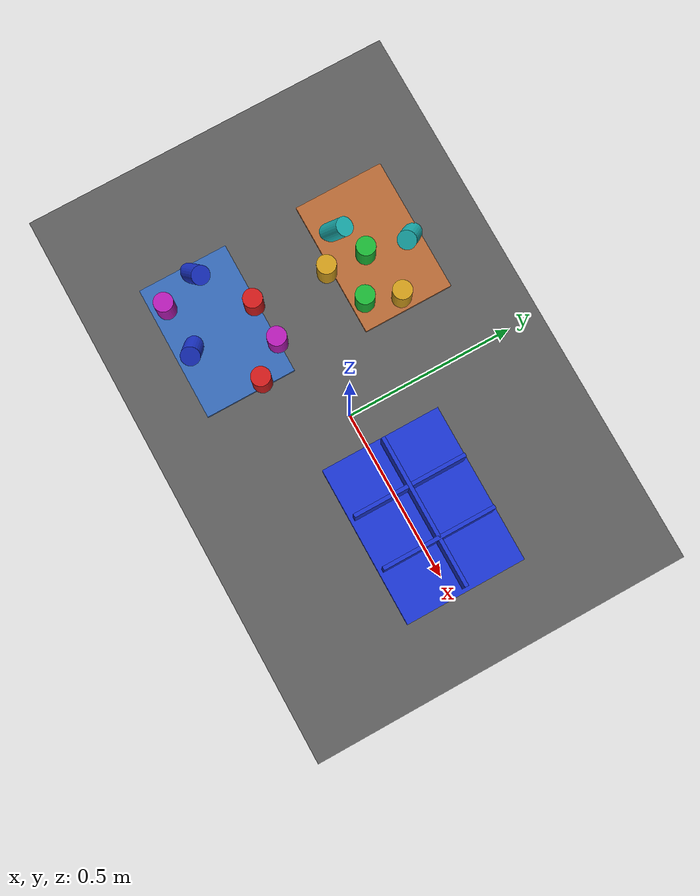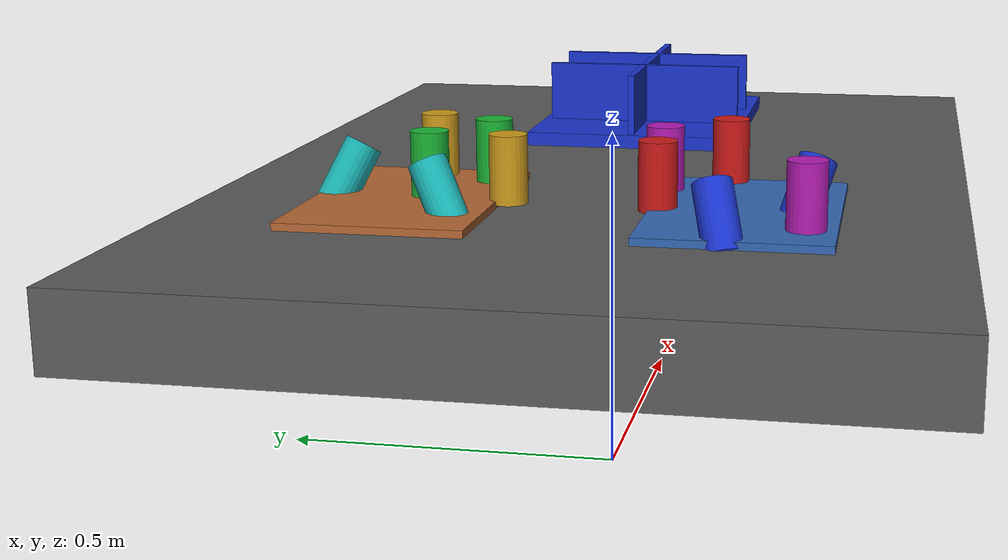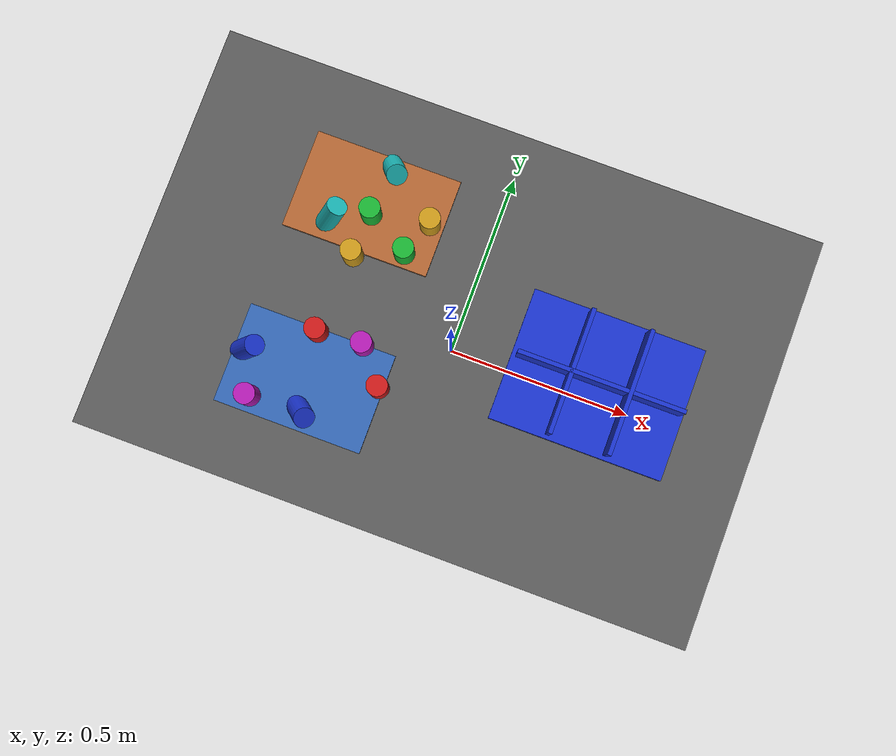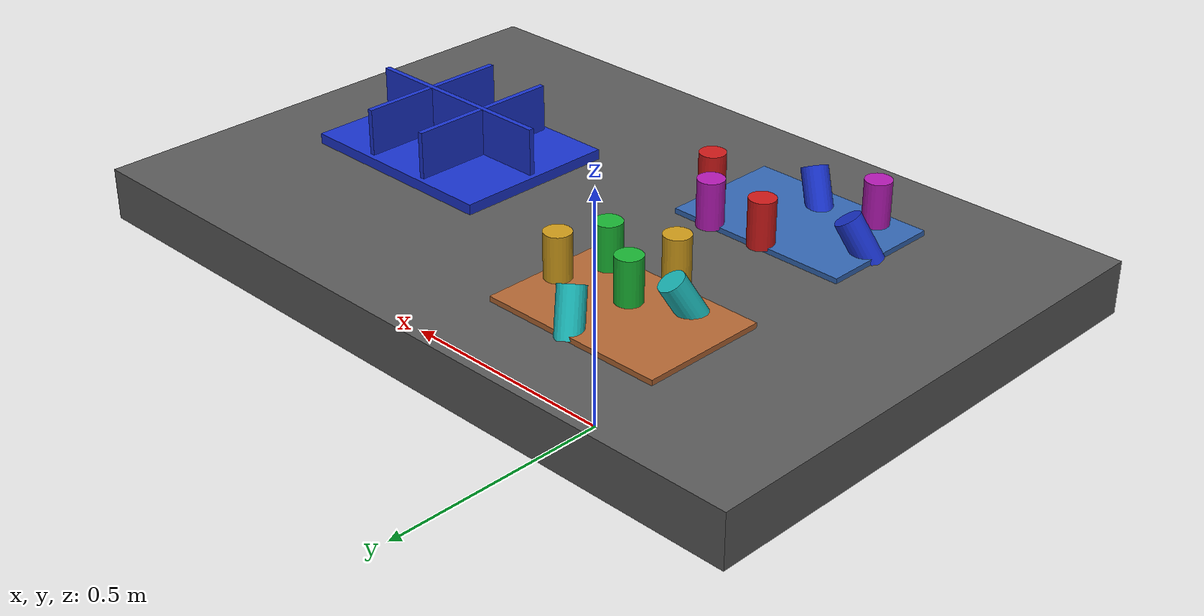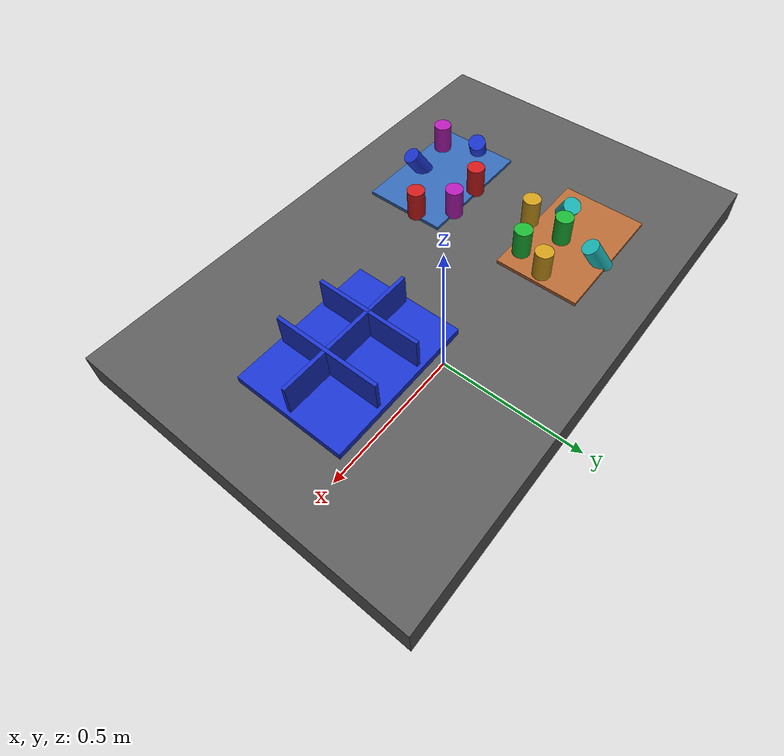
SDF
<?xml version="1.0" ?>
<sdf version="1.9">
  <!-- Standalone M1B scene.  The controller-backed Panda is spawned by the
       existing launch path; this file never alters the frozen M1A cube world. -->
  <world name="industrial_cylinder_v1">
    <physics name="bullet" type="bullet"><max_step_size>0.001</max_step_size><real_time_factor>1.0</real_time_factor></physics>
    <plugin name="gz::sim::systems::Physics" filename="gz-sim-physics-system"><engine><filename>gz-physics-bullet-featherstone-plugin</filename></engine></plugin>
    <plugin name="gz::sim::systems::UserCommands" filename="gz-sim-user-commands-system"/>
    <plugin name="gz::sim::systems::SceneBroadcaster" filename="gz-sim-scene-broadcaster-system"/>
    <plugin name="gz::sim::systems::Sensors" filename="gz-sim-sensors-system"><render_engine>ogre2</render_engine></plugin>
    <gravity>0 0 -9.81</gravity>
    <light type="directional" name="industrial_light"><pose>0 0 5 0 0 0</pose><direction>-0.3 0.2 -0.9</direction><diffuse>0.9 0.9 0.9 1</diffuse></light>
    <model name="industrial_work_table"><static>true</static><link name="link"><pose>0 0 0.4 0 0 0</pose><collision name="collision"><geometry><box><size>1.5 1.0 0.1</size></box></geometry></collision><visual name="visual"><geometry><box><size>1.5 1.0 0.1</size></box></geometry><material><diffuse>0.35 0.35 0.35 1</diffuse></material></visual></link></model>
    <model name="camera_fixture"><static>true</static><link name="camera_rgbd"><pose>-0.80 -0.80 1.40 0 0.77 0.93</pose><sensor name="front_rgbd" type="rgbd_camera"><always_on>1</always_on><update_rate>15</update_rate><topic>/xh/camera/rgbd</topic><camera><horizontal_fov>1.047</horizontal_fov><image><width>640</width><height>480</height><format>R8G8B8</format></image><clip><near>0.1</near><far>4.0</far></clip></camera></sensor></link></model>
    <model name="incoming_zone_a"><static>true</static><link name="link"><pose>-0.28 -0.22 0.455 0 0 0</pose><visual name="visual"><geometry><box><size>0.36 0.24 0.01</size></box></geometry><material><diffuse>0.2 0.4 0.7 1</diffuse></material></visual></link></model>
    <model name="incoming_zone_b"><static>true</static><link name="link"><pose>-0.28 0.22 0.455 0 0 0</pose><visual name="visual"><geometry><box><size>0.36 0.24 0.01</size></box></geometry><material><diffuse>0.7 0.4 0.2 1</diffuse></material></visual></link></model>
    <!-- M1B_RANDOM_PARTS_BEGIN -->
    <model name="cylinder_01"><pose>-0.1106 -0.1827 0.5000 0.0000 0.0000 -0.5629</pose><link name="link"><inertial><mass>0.06</mass></inertial><collision name="collision"><geometry><cylinder><radius>0.025</radius><length>0.09</length></cylinder></geometry></collision><visual name="visual"><geometry><cylinder><radius>0.025</radius><length>0.09</length></cylinder></geometry><material><diffuse>0.800 0.100 0.100 1</diffuse><specular>0.15 0.15 0.15 1</specular></material></visual></link></model>
    <model name="cylinder_02"><pose>-0.1651 0.1329 0.5000 3.1416 0.0000 -0.4807</pose><link name="link"><inertial><mass>0.06</mass></inertial><collision name="collision"><geometry><cylinder><radius>0.025</radius><length>0.09</length></cylinder></geometry></collision><visual name="visual"><geometry><cylinder><radius>0.025</radius><length>0.09</length></cylinder></geometry><material><diffuse>0.100 0.700 0.200 1</diffuse><specular>0.15 0.15 0.15 1</specular></material></visual></link></model>
    <model name="cylinder_03"><pose>-0.4269 -0.2008 0.4800 0.4500 -0.3000 2.5755</pose><link name="link"><inertial><mass>0.06</mass></inertial><collision name="collision"><geometry><cylinder><radius>0.025</radius><length>0.09</length></cylinder></geometry></collision><visual name="visual"><geometry><cylinder><radius>0.025</radius><length>0.09</length></cylinder></geometry><material><diffuse>0.100 0.200 0.800 1</diffuse><specular>0.15 0.15 0.15 1</specular></material></visual></link></model>
    <model name="cylinder_04"><pose>-0.1321 0.2178 0.5000 0.0000 0.0000 -2.8323</pose><link name="link"><inertial><mass>0.06</mass></inertial><collision name="collision"><geometry><cylinder><radius>0.025</radius><length>0.09</length></cylinder></geometry></collision><visual name="visual"><geometry><cylinder><radius>0.025</radius><length>0.09</length></cylinder></geometry><material><diffuse>0.800 0.600 0.100 1</diffuse><specular>0.15 0.15 0.15 1</specular></material></visual></link></model>
    <model name="cylinder_05"><pose>-0.1788 -0.1027 0.5000 3.1416 0.0000 -3.1246</pose><link name="link"><inertial><mass>0.06</mass></inertial><collision name="collision"><geometry><cylinder><radius>0.025</radius><length>0.09</length></cylinder></geometry></collision><visual name="visual"><geometry><cylinder><radius>0.025</radius><length>0.09</length></cylinder></geometry><material><diffuse>0.700 0.100 0.700 1</diffuse><specular>0.15 0.15 0.15 1</specular></material></visual></link></model>
    <model name="cylinder_06"><pose>-0.3572 0.1560 0.4800 0.4500 -0.3000 3.1114</pose><link name="link"><inertial><mass>0.06</mass></inertial><collision name="collision"><geometry><cylinder><radius>0.025</radius><length>0.09</length></cylinder></geometry></collision><visual name="visual"><geometry><cylinder><radius>0.025</radius><length>0.09</length></cylinder></geometry><material><diffuse>0.100 0.700 0.700 1</diffuse><specular>0.15 0.15 0.15 1</specular></material></visual></link></model>
    <model name="cylinder_07"><pose>-0.2888 -0.1090 0.5000 0.0000 0.0000 -2.2702</pose><link name="link"><inertial><mass>0.06</mass></inertial><collision name="collision"><geometry><cylinder><radius>0.025</radius><length>0.09</length></cylinder></geometry></collision><visual name="visual"><geometry><cylinder><radius>0.025</radius><length>0.09</length></cylinder></geometry><material><diffuse>0.800 0.100 0.100 1</diffuse><specular>0.15 0.15 0.15 1</specular></material></visual></link></model>
    <model name="cylinder_08"><pose>-0.2700 0.1933 0.5000 3.1416 0.0000 0.1812</pose><link name="link"><inertial><mass>0.06</mass></inertial><collision name="collision"><geometry><cylinder><radius>0.025</radius><length>0.09</length></cylinder></geometry></collision><visual name="visual"><geometry><cylinder><radius>0.025</radius><length>0.09</length></cylinder></geometry><material><diffuse>0.100 0.700 0.200 1</diffuse><specular>0.15 0.15 0.15 1</specular></material></visual></link></model>
    <model name="cylinder_09"><pose>-0.2602 -0.2948 0.4800 0.4500 -0.3000 1.5602</pose><link name="link"><inertial><mass>0.06</mass></inertial><collision name="collision"><geometry><cylinder><radius>0.025</radius><length>0.09</length></cylinder></geometry></collision><visual name="visual"><geometry><cylinder><radius>0.025</radius><length>0.09</length></cylinder></geometry><material><diffuse>0.100 0.200 0.800 1</diffuse><specular>0.15 0.15 0.15 1</specular></material></visual></link></model>
    <model name="cylinder_10"><pose>-0.2761 0.0872 0.5000 0.0000 0.0000 2.1755</pose><link name="link"><inertial><mass>0.06</mass></inertial><collision name="collision"><geometry><cylinder><radius>0.025</radius><length>0.09</length></cylinder></geometry></collision><visual name="visual"><geometry><cylinder><radius>0.025</radius><length>0.09</length></cylinder></geometry><material><diffuse>0.800 0.600 0.100 1</diffuse><specular>0.15 0.15 0.15 1</specular></material></visual></link></model>
    <model name="cylinder_11"><pose>-0.3840 -0.3019 0.5000 3.1416 0.0000 0.4880</pose><link name="link"><inertial><mass>0.06</mass></inertial><collision name="collision"><geometry><cylinder><radius>0.025</radius><length>0.09</length></cylinder></geometry></collision><visual name="visual"><geometry><cylinder><radius>0.025</radius><length>0.09</length></cylinder></geometry><material><diffuse>0.700 0.100 0.700 1</diffuse><specular>0.15 0.15 0.15 1</specular></material></visual></link></model>
    <model name="cylinder_12"><pose>-0.2551 0.3098 0.4800 0.4500 -0.3000 1.2213</pose><link name="link"><inertial><mass>0.06</mass></inertial><collision name="collision"><geometry><cylinder><radius>0.025</radius><length>0.09</length></cylinder></geometry></collision><visual name="visual"><geometry><cylinder><radius>0.025</radius><length>0.09</length></cylinder></geometry><material><diffuse>0.100 0.700 0.700 1</diffuse><specular>0.15 0.15 0.15 1</specular></material></visual></link></model>
    <!-- M1B_RANDOM_PARTS_END -->
    <model name="blue_partition_bin"><static>true</static><pose>0.36 0 0.45 0 0 0</pose><link name="link"><collision name="floor"><pose>0 0 0.01 0 0 0</pose><geometry><box><size>0.42 0.32 0.02</size></box></geometry></collision><visual name="floor_visual"><pose>0 0 0.01 0 0 0</pose><geometry><box><size>0.42 0.32 0.02</size></box></geometry><material><diffuse>0.1 0.2 0.8 1</diffuse></material></visual><visual name="row_divider"><pose>0 0 0.06 0 0 0</pose><geometry><box><size>0.40 0.01 0.10</size></box></geometry><material><diffuse>0.1 0.2 0.8 1</diffuse></material></visual><visual name="col_divider_a"><pose>-0.07 0 0.06 0 0 0</pose><geometry><box><size>0.01 0.30 0.10</size></box></geometry><material><diffuse>0.1 0.2 0.8 1</diffuse></material></visual><visual name="col_divider_b"><pose>0.07 0 0.06 0 0 0</pose><geometry><box><size>0.01 0.30 0.10</size></box></geometry><material><diffuse>0.1 0.2 0.8 1</diffuse></material></visual></link></model>
    <!-- Reserved only: second table, bin transport corridor, stackable-bin
         collision volume, and second arm mounting namespace. -->
  </world>
</sdf>
